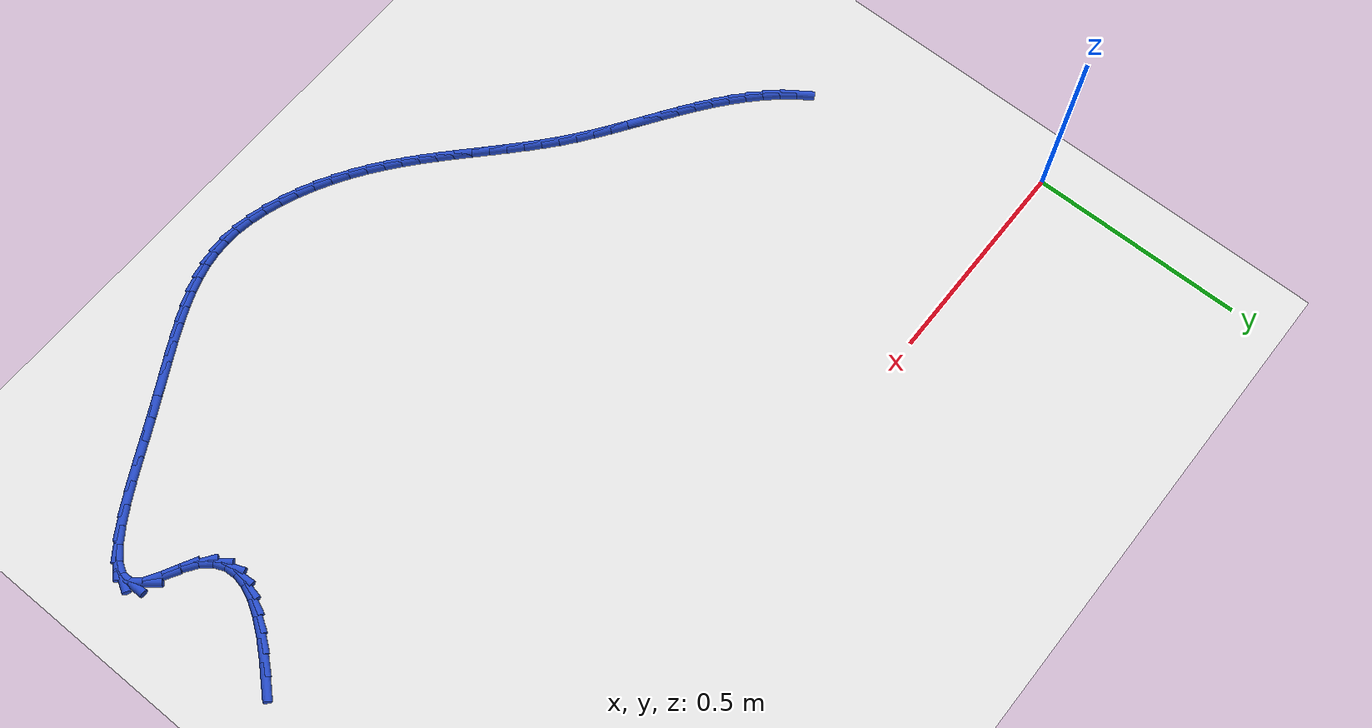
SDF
<sdf version="1.6">
 <world name="default">
  <model name="ground_plane">
   <static>1</static>
   <link name="link">
    <collision name="collision">
     <geometry><plane><normal>0 0 1</normal><size>100 100</size></plane></geometry>
     <surface><friction><ode><mu>100</mu><mu2>50</mu2></ode></friction></surface>
    </collision>
    <visual name="visual">
     <cast_shadows>0</cast_shadows>
     <geometry><plane><normal>0 0 1</normal><size>100 100</size></plane></geometry>
     <material>
      <script><uri>file://media/materials/scripts/gazebo.material</uri><name>Gazebo/WhiteGlow</name></script>
     </material>
    </visual>
   </link>
  </model>
  <model name="line">
   <link name="link_119">
    <pose>1.903261656234816 -0.5709529802142252 0.01 0 1.57 0.8415782387992639</pose>
    <collision name="collision">
     <geometry><cylinder><radius>0.01</radius><length>0.08</length></cylinder></geometry>
    </collision>
    <visual name="visual">
     <material>
      <script><name>Gazebo/Blue</name><uri>file://media/materials/scripts/gazebo.material</uri></script>
     </material>
     <geometry><cylinder><radius>0.01</radius><length>0.08</length></cylinder></geometry>
    </visual>
   </link>
   <link name="link_120">
    <pose>1.8698665065550368 -0.6083282029364278 0.01 0 1.57 0.8847039249704703</pose>
    <collision name="collision">
     <geometry><cylinder><radius>0.01</radius><length>0.08</length></cylinder></geometry>
    </collision>
    <visual name="visual">
     <material>
      <script><name>Gazebo/Blue</name><uri>file://media/materials/scripts/gazebo.material</uri></script>
     </material>
     <geometry><cylinder><radius>0.01</radius><length>0.08</length></cylinder></geometry>
    </visual>
   </link>
   <link name="link_121">
    <pose>1.8404540942102758 -0.6442501008553485 0.01 0 1.57 0.948485948904589</pose>
    <collision name="collision">
     <geometry><cylinder><radius>0.01</radius><length>0.08</length></cylinder></geometry>
    </collision>
    <visual name="visual">
     <material>
      <script><name>Gazebo/Blue</name><uri>file://media/materials/scripts/gazebo.material</uri></script>
     </material>
     <geometry><cylinder><radius>0.01</radius><length>0.08</length></cylinder></geometry>
    </visual>
   </link>
   <link name="link_122">
    <pose>1.8157820419484907 -0.6786409013650861 0.01 0 1.57 1.0415556207830905</pose>
    <collision name="collision">
     <geometry><cylinder><radius>0.01</radius><length>0.08</length></cylinder></geometry>
    </collision>
    <visual name="visual">
     <material>
      <script><name>Gazebo/Blue</name><uri>file://media/materials/scripts/gazebo.material</uri></script>
     </material>
     <geometry><cylinder><radius>0.01</radius><length>0.08</length></cylinder></geometry>
    </visual>
   </link>
   <link name="link_123">
    <pose>1.7966079725176378 -0.7114228318597396 0.01 0 1.57 1.1770443567564446</pose>
    <collision name="collision">
     <geometry><cylinder><radius>0.01</radius><length>0.08</length></cylinder></geometry>
    </collision>
    <visual name="visual">
     <material>
      <script><name>Gazebo/Blue</name><uri>file://media/materials/scripts/gazebo.material</uri></script>
     </material>
     <geometry><cylinder><radius>0.01</radius><length>0.08</length></cylinder></geometry>
    </visual>
   </link>
   <link name="link_124">
    <pose>1.7836895086656728 -0.7425181197334073 0.01 0 1.57 1.3721205795709577</pose>
    <collision name="collision">
     <geometry><cylinder><radius>0.01</radius><length>0.08</length></cylinder></geometry>
    </collision>
    <visual name="visual">
     <material>
      <script><name>Gazebo/Blue</name><uri>file://media/materials/scripts/gazebo.material</uri></script>
     </material>
     <geometry><cylinder><radius>0.01</radius><length>0.08</length></cylinder></geometry>
    </visual>
   </link>
   <link name="link_125">
    <pose>1.7777842731405533 -0.7718489923801881 0.01 0 1.57 -1.5030317527951953</pose>
    <collision name="collision">
     <geometry><cylinder><radius>0.01</radius><length>0.08</length></cylinder></geometry>
    </collision>
    <visual name="visual">
     <material>
      <script><name>Gazebo/Blue</name><uri>file://media/materials/scripts/gazebo.material</uri></script>
     </material>
     <geometry><cylinder><radius>0.01</radius><length>0.08</length></cylinder></geometry>
    </visual>
   </link>
   <link name="link_126">
    <pose>1.7796498886902359 -0.7993376771941807 0.01 0 1.57 -1.1846855676670192</pose>
    <collision name="collision">
     <geometry><cylinder><radius>0.01</radius><length>0.08</length></cylinder></geometry>
    </collision>
    <visual name="visual">
     <material>
      <script><name>Gazebo/Blue</name><uri>file://media/materials/scripts/gazebo.material</uri></script>
     </material>
     <geometry><cylinder><radius>0.01</radius><length>0.08</length></cylinder></geometry>
    </visual>
   </link>
   <link name="link_127">
    <pose>1.7900439780626758 -0.8249064015694836 0.01 0 1.57 -0.8751150414555057</pose>
    <collision name="collision">
     <geometry><cylinder><radius>0.01</radius><length>0.08</length></cylinder></geometry>
    </collision>
    <visual name="visual">
     <material>
      <script><name>Gazebo/Blue</name><uri>file://media/materials/scripts/gazebo.material</uri></script>
     </material>
     <geometry><cylinder><radius>0.01</radius><length>0.08</length></cylinder></geometry>
    </visual>
   </link>
   <link name="link_128">
    <pose>1.8097241640058312 -0.8484773929001957 0.01 0 1.57 -0.6262928546665864</pose>
    <collision name="collision">
     <geometry><cylinder><radius>0.01</radius><length>0.08</length></cylinder></geometry>
    </collision>
    <visual name="visual">
     <material>
      <script><name>Gazebo/Blue</name><uri>file://media/materials/scripts/gazebo.material</uri></script>
     </material>
     <geometry><cylinder><radius>0.01</radius><length>0.08</length></cylinder></geometry>
    </visual>
   </link>
   <link name="link_129">
    <pose>1.8394384843724754 -0.8699742807991041 0.01 0 1.57 -0.4922129104273362</pose>
    <collision name="collision">
     <geometry><cylinder><radius>0.01</radius><length>0.08</length></cylinder></geometry>
    </collision>
    <visual name="visual">
     <material>
      <script><name>Gazebo/Blue</name><uri>file://media/materials/scripts/gazebo.material</uri></script>
     </material>
     <geometry><cylinder><radius>0.01</radius><length>0.08</length></cylinder></geometry>
    </visual>
   </link>
   <link name="link_130">
    <pose>1.8764637934441037 -0.8898285103931667 0.01 0 1.57 -0.5426720207434045</pose>
    <collision name="collision">
     <geometry><cylinder><radius>0.01</radius><length>0.08</length></cylinder></geometry>
    </collision>
    <visual name="visual">
     <material>
      <script><name>Gazebo/Blue</name><uri>file://media/materials/scripts/gazebo.material</uri></script>
     </material>
     <geometry><cylinder><radius>0.01</radius><length>0.08</length></cylinder></geometry>
    </visual>
   </link>
   <link name="link_131">
    <pose>1.9094662544713328 -0.909731224662657 0.01 0 1.57 -0.8891666629201206</pose>
    <collision name="collision">
     <geometry><cylinder><radius>0.01</radius><length>0.08</length></cylinder></geometry>
    </collision>
    <visual name="visual">
     <material>
      <script><name>Gazebo/Blue</name><uri>file://media/materials/scripts/gazebo.material</uri></script>
     </material>
     <geometry><cylinder><radius>0.01</radius><length>0.08</length></cylinder></geometry>
    </visual>
   </link>
   <link name="link_132">
    <pose>1.927032550264337 -0.931381650521821 0.01 0 1.57 -1.5607865776209213</pose>
    <collision name="collision">
     <geometry><cylinder><radius>0.01</radius><length>0.08</length></cylinder></geometry>
    </collision>
    <visual name="visual">
     <material>
      <script><name>Gazebo/Blue</name><uri>file://media/materials/scripts/gazebo.material</uri></script>
     </material>
     <geometry><cylinder><radius>0.01</radius><length>0.08</length></cylinder></geometry>
    </visual>
   </link>
   <link name="link_133">
    <pose>1.927269561474404 -0.955058896585552 0.01 0 1.57 1.0491728347128189</pose>
    <collision name="collision">
     <geometry><cylinder><radius>0.01</radius><length>0.08</length></cylinder></geometry>
    </collision>
    <visual name="visual">
     <material>
      <script><name>Gazebo/Blue</name><uri>file://media/materials/scripts/gazebo.material</uri></script>
     </material>
     <geometry><cylinder><radius>0.01</radius><length>0.08</length></cylinder></geometry>
    </visual>
   </link>
   <link name="link_134">
    <pose>1.9127165087775306 -0.9803809037826219 0.01 0 1.57 0.7816844360676856</pose>
    <collision name="collision">
     <geometry><cylinder><radius>0.01</radius><length>0.08</length></cylinder></geometry>
    </collision>
    <visual name="visual">
     <material>
      <script><name>Gazebo/Blue</name><uri>file://media/materials/scripts/gazebo.material</uri></script>
     </material>
     <geometry><cylinder><radius>0.01</radius><length>0.08</length></cylinder></geometry>
    </visual>
   </link>
   <link name="link_135">
    <pose>1.8859373186634465 -1.0069619277005117 0.01 0 1.57 0.6456620883646959</pose>
    <collision name="collision">
     <geometry><cylinder><radius>0.01</radius><length>0.08</length></cylinder></geometry>
    </collision>
    <visual name="visual">
     <material>
      <script><name>Gazebo/Blue</name><uri>file://media/materials/scripts/gazebo.material</uri></script>
     </material>
     <geometry><cylinder><radius>0.01</radius><length>0.08</length></cylinder></geometry>
    </visual>
   </link>
   <link name="link_136">
    <pose>1.8494959176218828 -1.0344162239267034 0.01 0 1.57 0.5705574490575879</pose>
    <collision name="collision">
     <geometry><cylinder><radius>0.01</radius><length>0.08</length></cylinder></geometry>
    </collision>
    <visual name="visual">
     <material>
      <script><name>Gazebo/Blue</name><uri>file://media/materials/scripts/gazebo.material</uri></script>
     </material>
     <geometry><cylinder><radius>0.01</radius><length>0.08</length></cylinder></geometry>
    </visual>
   </link>
   <link name="link_137">
    <pose>1.8059562321425706 -1.0623580480486796 0.01 0 1.57 0.5280808986484752</pose>
    <collision name="collision">
     <geometry><cylinder><radius>0.01</radius><length>0.08</length></cylinder></geometry>
    </collision>
    <visual name="visual">
     <material>
      <script><name>Gazebo/Blue</name><uri>file://media/materials/scripts/gazebo.material</uri></script>
     </material>
     <geometry><cylinder><radius>0.01</radius><length>0.08</length></cylinder></geometry>
    </visual>
   </link>
   <link name="link_138">
    <pose>1.7578821887152392 -1.0904016556539216 0.01 0 1.57 0.5064441336083894</pose>
    <collision name="collision">
     <geometry><cylinder><radius>0.01</radius><length>0.08</length></cylinder></geometry>
    </collision>
    <visual name="visual">
     <material>
      <script><name>Gazebo/Blue</name><uri>file://media/materials/scripts/gazebo.material</uri></script>
     </material>
     <geometry><cylinder><radius>0.01</radius><length>0.08</length></cylinder></geometry>
    </visual>
   </link>
   <link name="link_139">
    <pose>1.7078377138296206 -1.118161302329911 0.01 0 1.57 0.5011633860322827</pose>
    <collision name="collision">
     <geometry><cylinder><radius>0.01</radius><length>0.08</length></cylinder></geometry>
    </collision>
    <visual name="visual">
     <material>
      <script><name>Gazebo/Blue</name><uri>file://media/materials/scripts/gazebo.material</uri></script>
     </material>
     <geometry><cylinder><radius>0.01</radius><length>0.08</length></cylinder></geometry>
    </visual>
   </link>
   <link name="link_140">
    <pose>1.6583867339754454 -1.1452512436641304 0.01 0 1.57 0.5095244423692863</pose>
    <collision name="collision">
     <geometry><cylinder><radius>0.01</radius><length>0.08</length></cylinder></geometry>
    </collision>
    <visual name="visual">
     <material>
      <script><name>Gazebo/Blue</name><uri>file://media/materials/scripts/gazebo.material</uri></script>
     </material>
     <geometry><cylinder><radius>0.01</radius><length>0.08</length></cylinder></geometry>
    </visual>
   </link>
   <link name="link_141">
    <pose>1.6117620052708832 -1.1713020895665738 0.01 0 1.57 0.5170365422605628</pose>
    <collision name="collision">
     <geometry><cylinder><radius>0.01</radius><length>0.08</length></cylinder></geometry>
    </collision>
    <visual name="visual">
     <material>
      <script><name>Gazebo/Blue</name><uri>file://media/materials/scripts/gazebo.material</uri></script>
     </material>
     <geometry><cylinder><radius>0.01</radius><length>0.08</length></cylinder></geometry>
    </visual>
   </link>
   <link name="link_142">
    <pose>1.56825753088679 -1.19604019218053 0.01 0 1.57 0.5168481876299512</pose>
    <collision name="collision">
     <geometry><cylinder><radius>0.01</radius><length>0.08</length></cylinder></geometry>
    </collision>
    <visual name="visual">
     <material>
      <script><name>Gazebo/Blue</name><uri>file://media/materials/scripts/gazebo.material</uri></script>
     </material>
     <geometry><cylinder><radius>0.01</radius><length>0.08</length></cylinder></geometry>
    </visual>
   </link>
   <link name="link_143">
    <pose>1.5274639204631693 -1.2192266396209934 0.01 0 1.57 0.5073140723424717</pose>
    <collision name="collision">
     <geometry><cylinder><radius>0.01</radius><length>0.08</length></cylinder></geometry>
    </collision>
    <visual name="visual">
     <material>
      <script><name>Gazebo/Blue</name><uri>file://media/materials/scripts/gazebo.material</uri></script>
     </material>
     <geometry><cylinder><radius>0.01</radius><length>0.08</length></cylinder></geometry>
    </visual>
   </link>
   <link name="link_144">
    <pose>1.4889707964960395 -1.2406225687514971 0.01 0 1.57 0.48665339105678346</pose>
    <collision name="collision">
     <geometry><cylinder><radius>0.01</radius><length>0.08</length></cylinder></geometry>
    </collision>
    <visual name="visual">
     <material>
      <script><name>Gazebo/Blue</name><uri>file://media/materials/scripts/gazebo.material</uri></script>
     </material>
     <geometry><cylinder><radius>0.01</radius><length>0.08</length></cylinder></geometry>
    </visual>
   </link>
   <link name="link_145">
    <pose>1.4523677814814202 -1.259989116435574 0.01 0 1.57 0.4530385990520232</pose>
    <collision name="collision">
     <geometry><cylinder><radius>0.01</radius><length>0.08</length></cylinder></geometry>
    </collision>
    <visual name="visual">
     <material>
      <script><name>Gazebo/Blue</name><uri>file://media/materials/scripts/gazebo.material</uri></script>
     </material>
     <geometry><cylinder><radius>0.01</radius><length>0.08</length></cylinder></geometry>
    </visual>
   </link>
   <link name="link_146">
    <pose>1.41724449791533 -1.2770874195367568 0.01 0 1.57 0.40480877688916284</pose>
    <collision name="collision">
     <geometry><cylinder><radius>0.01</radius><length>0.08</length></cylinder></geometry>
    </collision>
    <visual name="visual">
     <material>
      <script><name>Gazebo/Blue</name><uri>file://media/materials/scripts/gazebo.material</uri></script>
     </material>
     <geometry><cylinder><radius>0.01</radius><length>0.08</length></cylinder></geometry>
    </visual>
   </link>
   <link name="link_147">
    <pose>1.3831905682937877 -1.2916786149185773 0.01 0 1.57 0.34085667149855464</pose>
    <collision name="collision">
     <geometry><cylinder><radius>0.01</radius><length>0.08</length></cylinder></geometry>
    </collision>
    <visual name="visual">
     <material>
      <script><name>Gazebo/Blue</name><uri>file://media/materials/scripts/gazebo.material</uri></script>
     </material>
     <geometry><cylinder><radius>0.01</radius><length>0.08</length></cylinder></geometry>
    </visual>
   </link>
   <link name="link_148">
    <pose>1.3497956151128143 -1.3035238394445694 0.01 0 1.57 0.26120400422251244</pose>
    <collision name="collision">
     <geometry><cylinder><radius>0.01</radius><length>0.08</length></cylinder></geometry>
    </collision>
    <visual name="visual">
     <material>
      <script><name>Gazebo/Blue</name><uri>file://media/materials/scripts/gazebo.material</uri></script>
     </material>
     <geometry><cylinder><radius>0.01</radius><length>0.08</length></cylinder></geometry>
    </visual>
   </link>
   <link name="link_149">
    <pose>1.3166492608684266 -1.3123842299782646 0.01 0 1.57 0.16764046677351302</pose>
    <collision name="collision">
     <geometry><cylinder><radius>0.01</radius><length>0.08</length></cylinder></geometry>
    </collision>
    <visual name="visual">
     <material>
      <script><name>Gazebo/Blue</name><uri>file://media/materials/scripts/gazebo.material</uri></script>
     </material>
     <geometry><cylinder><radius>0.01</radius><length>0.08</length></cylinder></geometry>
    </visual>
   </link>
   <link name="link_150">
    <pose>1.2833411280566442 -1.3180209233831957 0.01 0 1.57 0.06408316634641995</pose>
    <collision name="collision">
     <geometry><cylinder><radius>0.01</radius><length>0.08</length></cylinder></geometry>
    </collision>
    <visual name="visual">
     <material>
      <script><name>Gazebo/Blue</name><uri>file://media/materials/scripts/gazebo.material</uri></script>
     </material>
     <geometry><cylinder><radius>0.01</radius><length>0.08</length></cylinder></geometry>
    </visual>
   </link>
   <link name="link_151">
    <pose>1.2494608391734872 -1.320195056522896 0.01 0 1.57 -0.04378057266391716</pose>
    <collision name="collision">
     <geometry><cylinder><radius>0.01</radius><length>0.08</length></cylinder></geometry>
    </collision>
    <visual name="visual">
     <material>
      <script><name>Gazebo/Blue</name><uri>file://media/materials/scripts/gazebo.material</uri></script>
     </material>
     <geometry><cylinder><radius>0.01</radius><length>0.08</length></cylinder></geometry>
    </visual>
   </link>
   <link name="link_152">
    <pose>1.2145980167149737 -1.3186677662608977 0.01 0 1.57 -0.14806969313026824</pose>
    <collision name="collision">
     <geometry><cylinder><radius>0.01</radius><length>0.08</length></cylinder></geometry>
    </collision>
    <visual name="visual">
     <material>
      <script><name>Gazebo/Blue</name><uri>file://media/materials/scripts/gazebo.material</uri></script>
     </material>
     <geometry><cylinder><radius>0.01</radius><length>0.08</length></cylinder></geometry>
    </visual>
   </link>
   <link name="link_153">
    <pose>1.1784504648737 -1.313275947082391 0.01 0 1.57 -0.23793587272320413</pose>
    <collision name="collision">
     <geometry><cylinder><radius>0.01</radius><length>0.08</length></cylinder></geometry>
    </collision>
    <visual name="visual">
     <material>
      <script><name>Gazebo/Blue</name><uri>file://media/materials/scripts/gazebo.material</uri></script>
     </material>
     <geometry><cylinder><radius>0.01</radius><length>0.08</length></cylinder></geometry>
    </visual>
   </link>
   <link name="link_154">
    <pose>1.1413008218000857 -1.304266041770581 0.01 0 1.57 -0.31423824254029153</pose>
    <collision name="collision">
     <geometry><cylinder><radius>0.01</radius><length>0.08</length></cylinder></geometry>
    </collision>
    <visual name="visual">
     <material>
      <script><name>Gazebo/Blue</name><uri>file://media/materials/scripts/gazebo.material</uri></script>
     </material>
     <geometry><cylinder><radius>0.01</radius><length>0.08</length></cylinder></geometry>
    </visual>
   </link>
   <link name="link_155">
    <pose>1.1036284532503682 -1.2920222577768432 0.01 0 1.57 -0.3806691000063585</pose>
    <collision name="collision">
     <geometry><cylinder><radius>0.01</radius><length>0.08</length></cylinder></geometry>
    </collision>
    <visual name="visual">
     <material>
      <script><name>Gazebo/Blue</name><uri>file://media/materials/scripts/gazebo.material</uri></script>
     </material>
     <geometry><cylinder><radius>0.01</radius><length>0.08</length></cylinder></geometry>
    </visual>
   </link>
   <link name="link_156">
    <pose>1.065912872557044 -1.2769289058974524 0.01 0 1.57 -0.4401811397721514</pose>
    <collision name="collision">
     <geometry><cylinder><radius>0.01</radius><length>0.08</length></cylinder></geometry>
    </collision>
    <visual name="visual">
     <material>
      <script><name>Gazebo/Blue</name><uri>file://media/materials/scripts/gazebo.material</uri></script>
     </material>
     <geometry><cylinder><radius>0.01</radius><length>0.08</length></cylinder></geometry>
    </visual>
   </link>
   <link name="link_157">
    <pose>1.0286335930526103 -1.2593702969286829 0.01 0 1.57 -0.49520318582723133</pose>
    <collision name="collision">
     <geometry><cylinder><radius>0.01</radius><length>0.08</length></cylinder></geometry>
    </collision>
    <visual name="visual">
     <material>
      <script><name>Gazebo/Blue</name><uri>file://media/materials/scripts/gazebo.material</uri></script>
     </material>
     <geometry><cylinder><radius>0.01</radius><length>0.08</length></cylinder></geometry>
    </visual>
   </link>
   <link name="link_158">
    <pose>0.9922701280695637 -1.2397307416668093 0.01 0 1.57 -0.5477829049271882</pose>
    <collision name="collision">
     <geometry><cylinder><radius>0.01</radius><length>0.08</length></cylinder></geometry>
    </collision>
    <visual name="visual">
     <material>
      <script><name>Gazebo/Blue</name><uri>file://media/materials/scripts/gazebo.material</uri></script>
     </material>
     <geometry><cylinder><radius>0.01</radius><length>0.08</length></cylinder></geometry>
    </visual>
   </link>
   <link name="link_159">
    <pose>0.9572911032473139 -1.2183914779197007 0.01 0 1.57 -0.5973581568036921</pose>
    <collision name="collision">
     <geometry><cylinder><radius>0.01</radius><length>0.08</length></cylinder></geometry>
    </collision>
    <visual name="visual">
     <material>
      <script><name>Gazebo/Blue</name><uri>file://media/materials/scripts/gazebo.material</uri></script>
     </material>
     <geometry><cylinder><radius>0.01</radius><length>0.08</length></cylinder></geometry>
    </visual>
   </link>
   <link name="link_160">
    <pose>0.9238553899291487 -1.1956463171365743 0.01 0 1.57 -0.6414005458538309</pose>
    <collision name="collision">
     <geometry><cylinder><radius>0.01</radius><length>0.08</length></cylinder></geometry>
    </collision>
    <visual name="visual">
     <material>
      <script><name>Gazebo/Blue</name><uri>file://media/materials/scripts/gazebo.material</uri></script>
     </material>
     <geometry><cylinder><radius>0.01</radius><length>0.08</length></cylinder></geometry>
    </visual>
   </link>
   <link name="link_161">
    <pose>0.8917750440660697 -1.1716911841279443 0.01 0 1.57 -0.6792458987637182</pose>
    <collision name="collision">
     <geometry><cylinder><radius>0.01</radius><length>0.08</length></cylinder></geometry>
    </collision>
    <visual name="visual">
     <material>
      <script><name>Gazebo/Blue</name><uri>file://media/materials/scripts/gazebo.material</uri></script>
     </material>
     <geometry><cylinder><radius>0.01</radius><length>0.08</length></cylinder></geometry>
    </visual>
   </link>
   <link name="link_162">
    <pose>0.8608437920074192 -1.146716830280263 0.01 0 1.57 -0.7105157782969801</pose>
    <collision name="collision">
     <geometry><cylinder><radius>0.01</radius><length>0.08</length></cylinder></geometry>
    </collision>
    <visual name="visual">
     <material>
      <script><name>Gazebo/Blue</name><uri>file://media/materials/scripts/gazebo.material</uri></script>
     </material>
     <geometry><cylinder><radius>0.01</radius><length>0.08</length></cylinder></geometry>
    </visual>
   </link>
   <link name="link_163">
    <pose>0.8308553601025396 -1.120914006979983 0.01 0 1.57 -0.7349611493355139</pose>
    <collision name="collision">
     <geometry><cylinder><radius>0.01</radius><length>0.08</length></cylinder></geometry>
    </collision>
    <visual name="visual">
     <material>
      <script><name>Gazebo/Blue</name><uri>file://media/materials/scripts/gazebo.material</uri></script>
     </material>
     <geometry><cylinder><radius>0.01</radius><length>0.08</length></cylinder></geometry>
    </visual>
   </link>
   <link name="link_164">
    <pose>0.8016034747007731 -1.0944734656135573 0.01 0 1.57 -0.752428034393094</pose>
    <collision name="collision">
     <geometry><cylinder><radius>0.01</radius><length>0.08</length></cylinder></geometry>
    </collision>
    <visual name="visual">
     <material>
      <script><name>Gazebo/Blue</name><uri>file://media/materials/scripts/gazebo.material</uri></script>
     </material>
     <geometry><cylinder><radius>0.01</radius><length>0.08</length></cylinder></geometry>
    </visual>
   </link>
   <link name="link_165">
    <pose>0.7728818621514616 -1.0675859575674382 0.01 0 1.57 -0.7628261994139206</pose>
    <collision name="collision">
     <geometry><cylinder><radius>0.01</radius><length>0.08</length></cylinder></geometry>
    </collision>
    <visual name="visual">
     <material>
      <script><name>Gazebo/Blue</name><uri>file://media/materials/scripts/gazebo.material</uri></script>
     </material>
     <geometry><cylinder><radius>0.01</radius><length>0.08</length></cylinder></geometry>
    </visual>
   </link>
   <link name="link_166">
    <pose>0.7444842488039475 -1.040442234228078 0.01 0 1.57 -0.7661048575248087</pose>
    <collision name="collision">
     <geometry><cylinder><radius>0.01</radius><length>0.08</length></cylinder></geometry>
    </collision>
    <visual name="visual">
     <material>
      <script><name>Gazebo/Blue</name><uri>file://media/materials/scripts/gazebo.material</uri></script>
     </material>
     <geometry><cylinder><radius>0.01</radius><length>0.08</length></cylinder></geometry>
    </visual>
   </link>
   <link name="link_167">
    <pose>0.7162043610075737 -1.0132330469819308 0.01 0 1.57 -0.7622376161255338</pose>
    <collision name="collision">
     <geometry><cylinder><radius>0.01</radius><length>0.08</length></cylinder></geometry>
    </collision>
    <visual name="visual">
     <material>
      <script><name>Gazebo/Blue</name><uri>file://media/materials/scripts/gazebo.material</uri></script>
     </material>
     <geometry><cylinder><radius>0.01</radius><length>0.08</length></cylinder></geometry>
    </visual>
   </link>
   <link name="link_168">
    <pose>0.6878359251116813 -0.9861491472154474 0.01 0 1.57 -0.7512177498176567</pose>
    <collision name="collision">
     <geometry><cylinder><radius>0.01</radius><length>0.08</length></cylinder></geometry>
    </collision>
    <visual name="visual">
     <material>
      <script><name>Gazebo/Blue</name><uri>file://media/materials/scripts/gazebo.material</uri></script>
     </material>
     <geometry><cylinder><radius>0.01</radius><length>0.08</length></cylinder></geometry>
    </visual>
   </link>
   <link name="link_169">
    <pose>0.6591726674656126 -0.9593812863150809 0.01 0 1.57 -0.7330642130658195</pose>
    <collision name="collision">
     <geometry><cylinder><radius>0.01</radius><length>0.08</length></cylinder></geometry>
    </collision>
    <visual name="visual">
     <material>
      <script><name>Gazebo/Blue</name><uri>file://media/materials/scripts/gazebo.material</uri></script>
     </material>
     <geometry><cylinder><radius>0.01</radius><length>0.08</length></cylinder></geometry>
    </visual>
   </link>
   <link name="link_170">
    <pose>0.6300083144187102 -0.9331202156672841 0.01 0 1.57 -0.7078382923063234</pose>
    <collision name="collision">
     <geometry><cylinder><radius>0.01</radius><length>0.08</length></cylinder></geometry>
    </collision>
    <visual name="visual">
     <material>
      <script><name>Gazebo/Blue</name><uri>file://media/materials/scripts/gazebo.material</uri></script>
     </material>
     <geometry><cylinder><radius>0.01</radius><length>0.08</length></cylinder></geometry>
    </visual>
   </link>
   <link name="link_171">
    <pose>0.6001365923203164 -0.9075566866585096 0.01 0 1.57 -0.6758071438188721</pose>
    <collision name="collision">
     <geometry><cylinder><radius>0.01</radius><length>0.08</length></cylinder></geometry>
    </collision>
    <visual name="visual">
     <material>
      <script><name>Gazebo/Blue</name><uri>file://media/materials/scripts/gazebo.material</uri></script>
     </material>
     <geometry><cylinder><radius>0.01</radius><length>0.08</length></cylinder></geometry>
    </visual>
   </link>
   <link name="link_172">
    <pose>0.569355201504801 -0.8828777046016592 0.01 0 1.57 -0.643286704688767</pose>
    <collision name="collision">
     <geometry><cylinder><radius>0.01</radius><length>0.08</length></cylinder></geometry>
    </collision>
    <visual name="visual">
     <material>
      <script><name>Gazebo/Blue</name><uri>file://media/materials/scripts/gazebo.material</uri></script>
     </material>
     <geometry><cylinder><radius>0.01</radius><length>0.08</length></cylinder></geometry>
    </visual>
   </link>
   <link name="link_173">
    <pose>0.5376402411213071 -0.8591021073211156 0.01 0 1.57 -0.6187069738594239</pose>
    <collision name="collision">
     <geometry><cylinder><radius>0.01</radius><length>0.08</length></cylinder></geometry>
    </collision>
    <visual name="visual">
     <material>
      <script><name>Gazebo/Blue</name><uri>file://media/materials/scripts/gazebo.material</uri></script>
     </material>
     <geometry><cylinder><radius>0.01</radius><length>0.08</length></cylinder></geometry>
    </visual>
   </link>
   <link name="link_174">
    <pose>0.5052144239763842 -0.8360162624903067 0.01 0 1.57 -0.6025108314552363</pose>
    <collision name="collision">
     <geometry><cylinder><radius>0.01</radius><length>0.08</length></cylinder></geometry>
    </collision>
    <visual name="visual">
     <material>
      <script><name>Gazebo/Blue</name><uri>file://media/materials/scripts/gazebo.material</uri></script>
     </material>
     <geometry><cylinder><radius>0.01</radius><length>0.08</length></cylinder></geometry>
    </visual>
   </link>
   <link name="link_175">
    <pose>0.47231852981996214 -0.8133895069941022 0.01 0 1.57 -0.594554430203792</pose>
    <collision name="collision">
     <geometry><cylinder><radius>0.01</radius><length>0.08</length></cylinder></geometry>
    </collision>
    <visual name="visual">
     <material>
      <script><name>Gazebo/Blue</name><uri>file://media/materials/scripts/gazebo.material</uri></script>
     </material>
     <geometry><cylinder><radius>0.01</radius><length>0.08</length></cylinder></geometry>
    </visual>
   </link>
   <link name="link_176">
    <pose>0.4391933384019706 -0.7909911777173718 0.01 0 1.57 -0.5947616610722857</pose>
    <collision name="collision">
     <geometry><cylinder><radius>0.01</radius><length>0.08</length></cylinder></geometry>
    </collision>
    <visual name="visual">
     <material>
      <script><name>Gazebo/Blue</name><uri>file://media/materials/scripts/gazebo.material</uri></script>
     </material>
     <geometry><cylinder><radius>0.01</radius><length>0.08</length></cylinder></geometry>
    </visual>
   </link>
   <link name="link_177">
    <pose>0.4060796294723393 -0.7685906115449852 0.01 0 1.57 -0.6031386453685462</pose>
    <collision name="collision">
     <geometry><cylinder><radius>0.01</radius><length>0.08</length></cylinder></geometry>
    </collision>
    <visual name="visual">
     <material>
      <script><name>Gazebo/Blue</name><uri>file://media/materials/scripts/gazebo.material</uri></script>
     </material>
     <geometry><cylinder><radius>0.01</radius><length>0.08</length></cylinder></geometry>
    </visual>
   </link>
   <link name="link_178">
    <pose>0.3732181827809977 -0.7459571453618119 0.01 0 1.57 -0.6197734980113999</pose>
    <collision name="collision">
     <geometry><cylinder><radius>0.01</radius><length>0.08</length></cylinder></geometry>
    </collision>
    <visual name="visual">
     <material>
      <script><name>Gazebo/Blue</name><uri>file://media/materials/scripts/gazebo.material</uri></script>
     </material>
     <geometry><cylinder><radius>0.01</radius><length>0.08</length></cylinder></geometry>
    </visual>
   </link>
   <link name="link_179">
    <pose>0.34084977807787575 -0.7228601160527218 0.01 0 1.57 -0.6448212562517617</pose>
    <collision name="collision">
     <geometry><cylinder><radius>0.01</radius><length>0.08</length></cylinder></geometry>
    </collision>
    <visual name="visual">
     <material>
      <script><name>Gazebo/Blue</name><uri>file://media/materials/scripts/gazebo.material</uri></script>
     </material>
     <geometry><cylinder><radius>0.01</radius><length>0.08</length></cylinder></geometry>
    </visual>
   </link>
   <link name="link_180">
    <pose>0.30921519511290285 -0.6990688605025842 0.01 0 1.57 -0.6784718175344437</pose>
    <collision name="collision">
     <geometry><cylinder><radius>0.01</radius><length>0.08</length></cylinder></geometry>
    </collision>
    <visual name="visual">
     <material>
      <script><name>Gazebo/Blue</name><uri>file://media/materials/scripts/gazebo.material</uri></script>
     </material>
     <geometry><cylinder><radius>0.01</radius><length>0.08</length></cylinder></geometry>
    </visual>
   </link>
   <link name="link_181">
    <pose>0.2785552136360089 -0.6743527155962692 0.01 0 1.57 -0.720897341922736</pose>
    <collision name="collision">
     <geometry><cylinder><radius>0.01</radius><length>0.08</length></cylinder></geometry>
    </collision>
    <visual name="visual">
     <material>
      <script><name>Gazebo/Blue</name><uri>file://media/materials/scripts/gazebo.material</uri></script>
     </material>
     <geometry><cylinder><radius>0.01</radius><length>0.08</length></cylinder></geometry>
    </visual>
   </link>
   <link name="link_182">
    <pose>0.24911061339712337 -0.6484810182186461 0.01 0 1.57 -0.7721758657312505</pose>
    <collision name="collision">
     <geometry><cylinder><radius>0.01</radius><length>0.08</length></cylinder></geometry>
    </collision>
    <visual name="visual">
     <material>
      <script><name>Gazebo/Blue</name><uri>file://media/materials/scripts/gazebo.material</uri></script>
     </material>
     <geometry><cylinder><radius>0.01</radius><length>0.08</length></cylinder></geometry>
    </visual>
   </link>
   <link name="link_183">
    <pose>0.2211221741461761 -0.6212231052545848 0.01 0 1.57 -0.8321913663847964</pose>
    <collision name="collision">
     <geometry><cylinder><radius>0.01</radius><length>0.08</length></cylinder></geometry>
    </collision>
    <visual name="visual">
     <material>
      <script><name>Gazebo/Blue</name><uri>file://media/materials/scripts/gazebo.material</uri></script>
     </material>
     <geometry><cylinder><radius>0.01</radius><length>0.08</length></cylinder></geometry>
    </visual>
   </link>
   <link name="link_184">
    <pose>0.1948306756330967 -0.592348313588955 0.01 0 1.57 -0.8991702523633538</pose>
    <collision name="collision">
     <geometry><cylinder><radius>0.01</radius><length>0.08</length></cylinder></geometry>
    </collision>
    <visual name="visual">
     <material>
      <script><name>Gazebo/Blue</name><uri>file://media/materials/scripts/gazebo.material</uri></script>
     </material>
     <geometry><cylinder><radius>0.01</radius><length>0.08</length></cylinder></geometry>
    </visual>
   </link>
   <link name="link_185">
    <pose>0.17044584741014904 -0.5616718808719784 0.01 0 1.57 -0.9640963644480536</pose>
    <collision name="collision">
     <geometry><cylinder><radius>0.01</radius><length>0.08</length></cylinder></geometry>
    </collision>
    <visual name="visual">
     <material>
      <script><name>Gazebo/Blue</name><uri>file://media/materials/scripts/gazebo.material</uri></script>
     </material>
     <geometry><cylinder><radius>0.01</radius><length>0.08</length></cylinder></geometry>
    </visual>
   </link>
  </model>
 </world>
</sdf>
